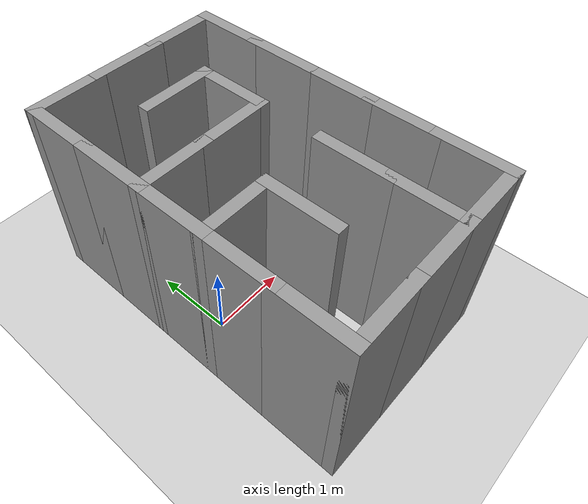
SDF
<sdf version="1.6">
 <world name="default">
  <scene><ambient>0.4 0.4 0.4 1</ambient><background>0.7 0.7 0.7 1</background><shadows>1</shadows></scene>
  <light name="sun" type="directional">
   <pose>0 0 10 0 -0 0</pose>
   <diffuse>0.8 0.8 0.8 1</diffuse>
   <specular>0.2 0.2 0.2 1</specular>
   <attenuation>
    <range>1000</range>
    <constant>0.9</constant>
    <linear>0.01</linear>
    <quadratic>0.001</quadratic>
   </attenuation>
   <direction>-0.5 0.1 -0.9</direction>
  </light>
  <model name="ground_plane">
   <static>1</static>
   <link name="link">
    <collision name="collision">
     <geometry><plane><normal>0 0 1</normal><size>100 100</size></plane></geometry>
     <surface>
      <contact><collide_bitmask>65535</collide_bitmask></contact>
      <friction><ode><mu>100</mu><mu2>50</mu2></ode></friction>
     </surface>
    </collision>
    <visual name="visual">
     <cast_shadows>0</cast_shadows>
     <geometry><plane><normal>0 0 1</normal><size>100 100</size></plane></geometry>
     <material>
      <script><uri>file://media/materials/scripts/gazebo.material</uri><name>Gazebo/Grey</name></script>
     </material>
    </visual>
   </link>
  </model>
  <physics name="default_physics" default="0" type="ode">
   <real_time_update_rate>1000</real_time_update_rate>
   <max_step_size>0.001</max_step_size>
   <real_time_factor>1</real_time_factor>
   <ode>
    <solver>
     <type>quick</type>
     <iters>150</iters>
     <precon_iters>0</precon_iters>
     <sor>1.4</sor>
     <use_dynamic_moi_rescaling>1</use_dynamic_moi_rescaling>
    </solver>
    <constraints>
     <cfm>1e-05</cfm>
     <erp>0.2</erp>
     <contact_max_correcting_vel>2000</contact_max_correcting_vel>
     <contact_surface_layer>0.01</contact_surface_layer>
    </constraints>
   </ode>
  </physics>
  <gravity>0 0 -9.8</gravity>
  <magnetic_field>6e-06 2.3e-05 -4.2e-05</magnetic_field>
  <atmosphere type="adiabatic"/>
  <spherical_coordinates>
   <surface_model>EARTH_WGS84</surface_model>
   <latitude_deg>0</latitude_deg>
   <longitude_deg>0</longitude_deg>
   <elevation>0</elevation>
   <heading_deg>0</heading_deg>
  </spherical_coordinates>
  <model name="maze1">
   <pose>1.36668 0.040377 0 0 0 -1.57165</pose>
   <link name="Wall_25">
    <collision name="Wall_25_Collision">
     <geometry><box><size>1 0.15 2.5</size></box></geometry>
     <pose>0 0 1.25 0 -0 0</pose>
    </collision>
    <visual name="Wall_25_Visual">
     <pose>0 0 1.25 0 -0 0</pose>
     <geometry><box><size>1 0.15 2.5</size></box></geometry>
     <material>
      <script><uri>file://media/materials/scripts/gazebo.material</uri><name>Gazebo/Grey</name></script>
      <ambient>1 1 1 1</ambient>
     </material>
     <meta><layer>0</layer></meta>
    </visual>
    <pose>0 -1.8325 0 0 -0 0</pose>
   </link>
   <link name="Wall_26">
    <collision name="Wall_26_Collision">
     <geometry><box><size>1 0.15 2.5</size></box></geometry>
     <pose>0 0 1.25 0 -0 0</pose>
    </collision>
    <visual name="Wall_26_Visual">
     <pose>0 0 1.25 0 -0 0</pose>
     <geometry><box><size>1 0.15 2.5</size></box></geometry>
     <material>
      <script><uri>file://media/materials/scripts/gazebo.material</uri><name>Gazebo/Grey</name></script>
      <ambient>1 1 1 1</ambient>
     </material>
     <meta><layer>0</layer></meta>
    </visual>
    <pose>0.425 -1.4075 0 0 -0 1.5708</pose>
   </link>
   <link name="Wall_28">
    <collision name="Wall_28_Collision">
     <geometry><box><size>1 0.15 2.5</size></box></geometry>
     <pose>0 0 1.25 0 -0 0</pose>
    </collision>
    <visual name="Wall_28_Visual">
     <pose>0 0 1.25 0 -0 0</pose>
     <geometry><box><size>1 0.15 2.5</size></box></geometry>
     <material>
      <script><uri>file://media/materials/scripts/gazebo.material</uri><name>Gazebo/Grey</name></script>
      <ambient>1 1 1 1</ambient>
     </material>
     <meta><layer>0</layer></meta>
    </visual>
    <pose>-0.425 -1.4075 0 0 -0 1.5708</pose>
   </link>
   <link name="Wall_29">
    <collision name="Wall_29_Collision">
     <geometry><box><size>1 0.15 2.5</size></box></geometry>
     <pose>0 0 1.25 0 -0 0</pose>
    </collision>
    <visual name="Wall_29_Visual">
     <pose>0 0 1.25 0 -0 0</pose>
     <geometry><box><size>1 0.15 2.5</size></box></geometry>
     <material>
      <script><uri>file://media/materials/scripts/gazebo.material</uri><name>Gazebo/Grey</name></script>
      <ambient>1 1 1 1</ambient>
     </material>
     <meta><layer>0</layer></meta>
    </visual>
    <pose>-0.425 -0.5575 0 0 -0 1.5708</pose>
   </link>
   <link name="Wall_30">
    <collision name="Wall_30_Collision">
     <geometry><box><size>1 0.15 2.5</size></box></geometry>
     <pose>0 0 1.25 0 -0 0</pose>
    </collision>
    <visual name="Wall_30_Visual">
     <pose>0 0 1.25 0 -0 0</pose>
     <geometry><box><size>1 0.15 2.5</size></box></geometry>
     <material>
      <script><uri>file://media/materials/scripts/gazebo.material</uri><name>Gazebo/Grey</name></script>
      <ambient>1 1 1 1</ambient>
     </material>
     <meta><layer>0</layer></meta>
    </visual>
    <pose>-0.85 -0.1325 0 0 -0 3.14159</pose>
   </link>
   <link name="Wall_31">
    <collision name="Wall_31_Collision">
     <geometry><box><size>1 0.15 2.5</size></box></geometry>
     <pose>0 0 1.25 0 -0 0</pose>
    </collision>
    <visual name="Wall_31_Visual">
     <pose>0 0 1.25 0 -0 0</pose>
     <geometry><box><size>1 0.15 2.5</size></box></geometry>
     <material>
      <script><uri>file://media/materials/scripts/gazebo.material</uri><name>Gazebo/Grey</name></script>
      <ambient>1 1 1 1</ambient>
     </material>
     <meta><layer>0</layer></meta>
    </visual>
    <pose>-1.275 -0.5575 0 0 -0 -1.5708</pose>
   </link>
   <link name="Wall_33">
    <collision name="Wall_33_Collision">
     <geometry><box><size>1 0.15 2.5</size></box></geometry>
     <pose>0 0 1.25 0 -0 0</pose>
    </collision>
    <visual name="Wall_33_Visual">
     <pose>0 0 1.25 0 -0 0</pose>
     <geometry><box><size>1 0.15 2.5</size></box></geometry>
     <material>
      <script><uri>file://media/materials/scripts/gazebo.material</uri><name>Gazebo/Grey</name></script>
      <ambient>1 1 1 1</ambient>
     </material>
     <meta><layer>0</layer></meta>
    </visual>
    <pose>0.85 -0.9825 0 0 -0 0</pose>
   </link>
   <link name="Wall_35">
    <collision name="Wall_35_Collision">
     <geometry><box><size>1 0.15 2.5</size></box></geometry>
     <pose>0 0 1.25 0 -0 0</pose>
    </collision>
    <visual name="Wall_35_Visual">
     <pose>0 0 1.25 0 -0 0</pose>
     <geometry><box><size>1 0.15 2.5</size></box></geometry>
     <material>
      <script><uri>file://media/materials/scripts/gazebo.material</uri><name>Gazebo/Grey</name></script>
      <ambient>1 1 1 1</ambient>
     </material>
     <meta><layer>0</layer></meta>
    </visual>
    <pose>0.85 -1.8325 0 0 -0 0</pose>
   </link>
   <link name="Wall_36">
    <collision name="Wall_36_Collision">
     <geometry><box><size>1 0.15 2.5</size></box></geometry>
     <pose>0 0 1.25 0 -0 0</pose>
    </collision>
    <visual name="Wall_36_Visual">
     <pose>0 0 1.25 0 -0 0</pose>
     <geometry><box><size>1 0.15 2.5</size></box></geometry>
     <material>
      <script><uri>file://media/materials/scripts/gazebo.material</uri><name>Gazebo/Grey</name></script>
      <ambient>1 1 1 1</ambient>
     </material>
     <meta><layer>0</layer></meta>
    </visual>
    <pose>1.7 -1.8325 0 0 -0 0</pose>
   </link>
   <link name="Wall_37">
    <collision name="Wall_37_Collision">
     <geometry><box><size>1 0.15 2.5</size></box></geometry>
     <pose>0 0 1.25 0 -0 0</pose>
    </collision>
    <visual name="Wall_37_Visual">
     <pose>0 0 1.25 0 -0 0</pose>
     <geometry><box><size>1 0.15 2.5</size></box></geometry>
     <material>
      <script><uri>file://media/materials/scripts/gazebo.material</uri><name>Gazebo/Grey</name></script>
      <ambient>1 1 1 1</ambient>
     </material>
     <meta><layer>0</layer></meta>
    </visual>
    <pose>2.125 -1.4075 0 0 -0 1.5708</pose>
   </link>
   <link name="Wall_38">
    <collision name="Wall_38_Collision">
     <geometry><box><size>1 0.15 2.5</size></box></geometry>
     <pose>0 0 1.25 0 -0 0</pose>
    </collision>
    <visual name="Wall_38_Visual">
     <pose>0 0 1.25 0 -0 0</pose>
     <geometry><box><size>1 0.15 2.5</size></box></geometry>
     <material>
      <script><uri>file://media/materials/scripts/gazebo.material</uri><name>Gazebo/Grey</name></script>
      <ambient>1 1 1 1</ambient>
     </material>
     <meta><layer>0</layer></meta>
    </visual>
    <pose>2.125 -0.5575 0 0 -0 1.5708</pose>
   </link>
   <link name="Wall_39">
    <collision name="Wall_39_Collision">
     <geometry><box><size>1 0.15 2.5</size></box></geometry>
     <pose>0 0 1.25 0 -0 0</pose>
    </collision>
    <visual name="Wall_39_Visual">
     <pose>0 0 1.25 0 -0 0</pose>
     <geometry><box><size>1 0.15 2.5</size></box></geometry>
     <material>
      <script><uri>file://media/materials/scripts/gazebo.material</uri><name>Gazebo/Grey</name></script>
      <ambient>1 1 1 1</ambient>
     </material>
     <meta><layer>0</layer></meta>
    </visual>
    <pose>1.7 -0.1325 0 0 -0 3.14159</pose>
   </link>
   <link name="Wall_40">
    <collision name="Wall_40_Collision">
     <geometry><box><size>1 0.15 2.5</size></box></geometry>
     <pose>0 0 1.25 0 -0 0</pose>
    </collision>
    <visual name="Wall_40_Visual">
     <pose>0 0 1.25 0 -0 0</pose>
     <geometry><box><size>1 0.15 2.5</size></box></geometry>
     <material>
      <script><uri>file://media/materials/scripts/gazebo.material</uri><name>Gazebo/Grey</name></script>
      <ambient>1 1 1 1</ambient>
     </material>
     <meta><layer>0</layer></meta>
    </visual>
    <pose>0.85 -0.1325 0 0 -0 3.14159</pose>
   </link>
   <link name="Wall_42">
    <collision name="Wall_42_Collision">
     <geometry><box><size>1 0.15 2.5</size></box></geometry>
     <pose>0 0 1.25 0 -0 0</pose>
    </collision>
    <visual name="Wall_42_Visual">
     <pose>0 0 1.25 0 -0 0</pose>
     <geometry><box><size>1 0.15 2.5</size></box></geometry>
     <material>
      <script><uri>file://media/materials/scripts/gazebo.material</uri><name>Gazebo/Grey</name></script>
      <ambient>1 1 1 1</ambient>
     </material>
     <meta><layer>0</layer></meta>
    </visual>
    <pose>2.125 0.2925 0 0 -0 1.5708</pose>
   </link>
   <link name="Wall_43">
    <collision name="Wall_43_Collision">
     <geometry><box><size>1 0.15 2.5</size></box></geometry>
     <pose>0 0 1.25 0 -0 0</pose>
    </collision>
    <visual name="Wall_43_Visual">
     <pose>0 0 1.25 0 -0 0</pose>
     <geometry><box><size>1 0.15 2.5</size></box></geometry>
     <material>
      <script><uri>file://media/materials/scripts/gazebo.material</uri><name>Gazebo/Grey</name></script>
      <ambient>1 1 1 1</ambient>
     </material>
     <meta><layer>0</layer></meta>
    </visual>
    <pose>1.7 0.7175 0 0 -0 3.14159</pose>
   </link>
   <link name="Wall_44">
    <collision name="Wall_44_Collision">
     <geometry><box><size>1 0.15 2.5</size></box></geometry>
     <pose>0 0 1.25 0 -0 0</pose>
    </collision>
    <visual name="Wall_44_Visual">
     <pose>0 0 1.25 0 -0 0</pose>
     <geometry><box><size>1 0.15 2.5</size></box></geometry>
     <material>
      <script><uri>file://media/materials/scripts/gazebo.material</uri><name>Gazebo/Grey</name></script>
      <ambient>1 1 1 1</ambient>
     </material>
     <meta><layer>0</layer></meta>
    </visual>
    <pose>0.85 0.7175 0 0 -0 3.14159</pose>
   </link>
   <link name="Wall_45">
    <collision name="Wall_45_Collision">
     <geometry><box><size>1 0.15 2.5</size></box></geometry>
     <pose>0 0 1.25 0 -0 0</pose>
    </collision>
    <visual name="Wall_45_Visual">
     <pose>0 0 1.25 0 -0 0</pose>
     <geometry><box><size>1 0.15 2.5</size></box></geometry>
     <material>
      <script><uri>file://media/materials/scripts/gazebo.material</uri><name>Gazebo/Grey</name></script>
      <ambient>1 1 1 1</ambient>
     </material>
     <meta><layer>0</layer></meta>
    </visual>
    <pose>0 0.7175 0 0 -0 3.14159</pose>
   </link>
   <link name="Wall_46">
    <collision name="Wall_46_Collision">
     <geometry><box><size>1 0.15 2.5</size></box></geometry>
     <pose>0 0 1.25 0 -0 0</pose>
    </collision>
    <visual name="Wall_46_Visual">
     <pose>0 0 1.25 0 -0 0</pose>
     <geometry><box><size>1 0.15 2.5</size></box></geometry>
     <material>
      <script><uri>file://media/materials/scripts/gazebo.material</uri><name>Gazebo/Grey</name></script>
      <ambient>1 1 1 1</ambient>
     </material>
     <meta><layer>0</layer></meta>
    </visual>
    <pose>-0.85 0.7175 0 0 -0 3.14159</pose>
   </link>
   <link name="Wall_47">
    <collision name="Wall_47_Collision">
     <geometry><box><size>1 0.15 2.5</size></box></geometry>
     <pose>0 0 1.25 0 -0 0</pose>
    </collision>
    <visual name="Wall_47_Visual">
     <pose>0 0 1.25 0 -0 0</pose>
     <geometry><box><size>1 0.15 2.5</size></box></geometry>
     <material>
      <script><uri>file://media/materials/scripts/gazebo.material</uri><name>Gazebo/Grey</name></script>
      <ambient>1 1 1 1</ambient>
     </material>
     <meta><layer>0</layer></meta>
    </visual>
    <pose>-1.7 0.7175 0 0 -0 3.14159</pose>
   </link>
   <link name="Wall_48">
    <collision name="Wall_48_Collision">
     <geometry><box><size>1.02 0.15 2.5</size></box></geometry>
     <pose>0 0 1.25 0 -0 0</pose>
    </collision>
    <visual name="Wall_48_Visual">
     <pose>0 0 1.25 0 -0 0</pose>
     <geometry><box><size>1.02 0.15 2.5</size></box></geometry>
     <material>
      <script><uri>file://media/materials/scripts/gazebo.material</uri><name>Gazebo/Grey</name></script>
      <ambient>1 1 1 1</ambient>
     </material>
     <meta><layer>0</layer></meta>
    </visual>
    <pose>-2.125 0.2825 0 0 -0 -1.5708</pose>
   </link>
   <link name="Wall_49">
    <collision name="Wall_49_Collision">
     <geometry><box><size>1 0.15 2.5</size></box></geometry>
     <pose>0 0 1.25 0 -0 0</pose>
    </collision>
    <visual name="Wall_49_Visual">
     <pose>0 0 1.25 0 -0 0</pose>
     <geometry><box><size>1 0.15 2.5</size></box></geometry>
     <material>
      <script><uri>file://media/materials/scripts/gazebo.material</uri><name>Gazebo/Grey</name></script>
      <ambient>1 1 1 1</ambient>
     </material>
     <meta><layer>0</layer></meta>
    </visual>
    <pose>-2.125 -0.5675 0 0 -0 -1.5708</pose>
   </link>
   <link name="Wall_50">
    <collision name="Wall_50_Collision">
     <geometry><box><size>0.98 0.15 2.5</size></box></geometry>
     <pose>0 0 1.25 0 -0 0</pose>
    </collision>
    <visual name="Wall_50_Visual">
     <pose>0 0 1.25 0 -0 0</pose>
     <geometry><box><size>0.98 0.15 2.5</size></box></geometry>
     <material>
      <script><uri>file://media/materials/scripts/gazebo.material</uri><name>Gazebo/Grey</name></script>
      <ambient>1 1 1 1</ambient>
     </material>
     <meta><layer>0</layer></meta>
    </visual>
    <pose>-2.125 -1.4175 0 0 -0 -1.5708</pose>
   </link>
   <link name="Wall_51">
    <collision name="Wall_51_Collision">
     <geometry><box><size>1 0.15 2.5</size></box></geometry>
     <pose>0 0 1.25 0 -0 0</pose>
    </collision>
    <visual name="Wall_51_Visual">
     <pose>0 0 1.25 0 -0 0</pose>
     <geometry><box><size>1 0.15 2.5</size></box></geometry>
     <material>
      <script><uri>file://media/materials/scripts/gazebo.material</uri><name>Gazebo/Grey</name></script>
      <ambient>1 1 1 1</ambient>
     </material>
     <meta><layer>0</layer></meta>
    </visual>
    <pose>-1.7 -1.8325 0 0 -0 0</pose>
   </link>
   <link name="Wall_52">
    <collision name="Wall_52_Collision">
     <geometry><box><size>1 0.15 2.5</size></box></geometry>
     <pose>0 0 1.25 0 -0 0</pose>
    </collision>
    <visual name="Wall_52_Visual">
     <pose>0 0 1.25 0 -0 0</pose>
     <geometry><box><size>1 0.15 2.5</size></box></geometry>
     <material>
      <script><uri>file://media/materials/scripts/gazebo.material</uri><name>Gazebo/Grey</name></script>
      <ambient>1 1 1 1</ambient>
     </material>
     <meta><layer>0</layer></meta>
    </visual>
    <pose>-0.85 -1.8325 0 0 -0 0</pose>
   </link>
   <static>1</static>
  </model>
 </world>
</sdf>
